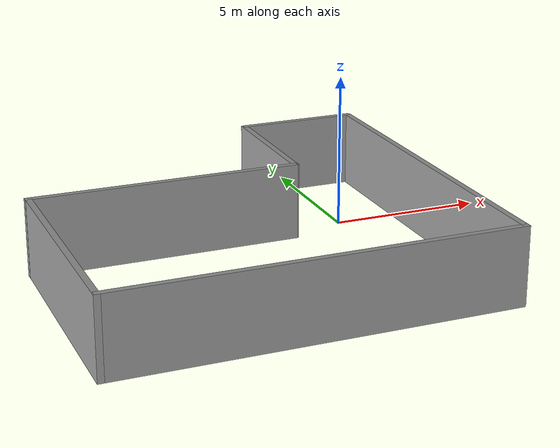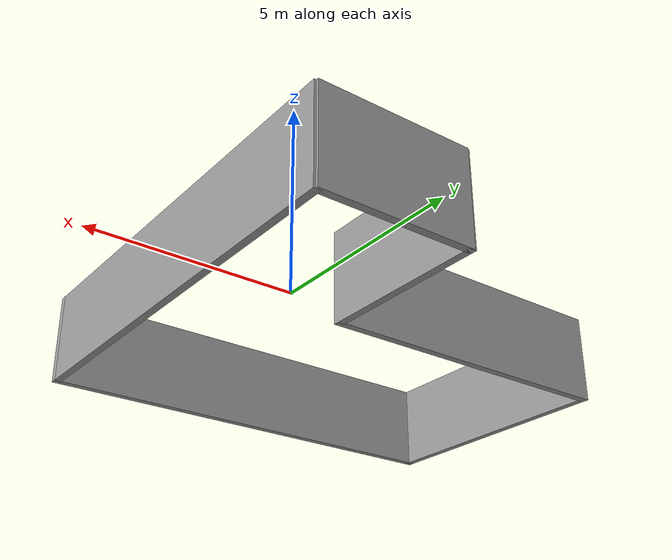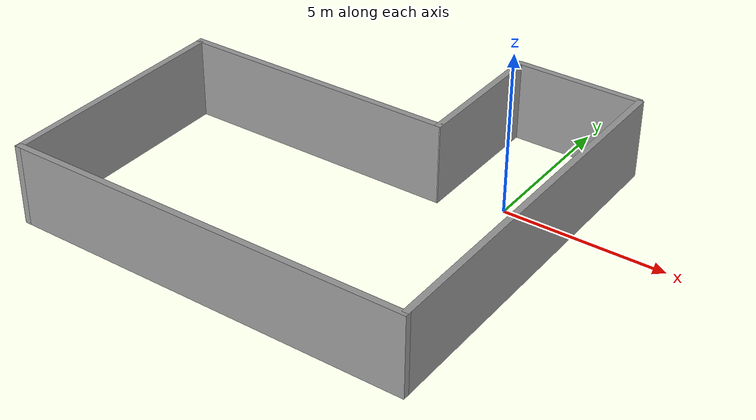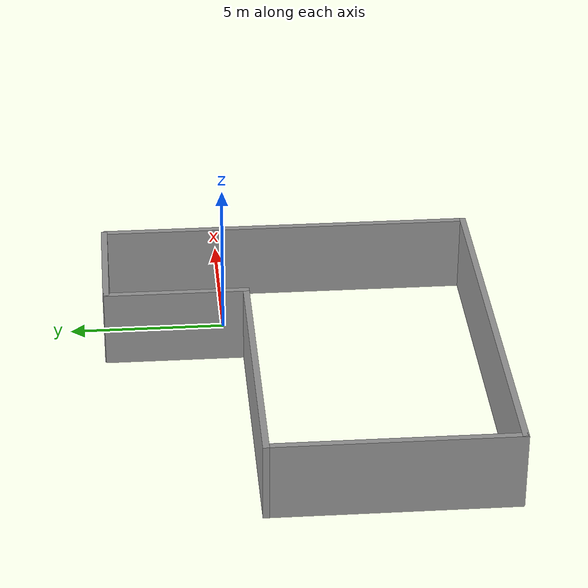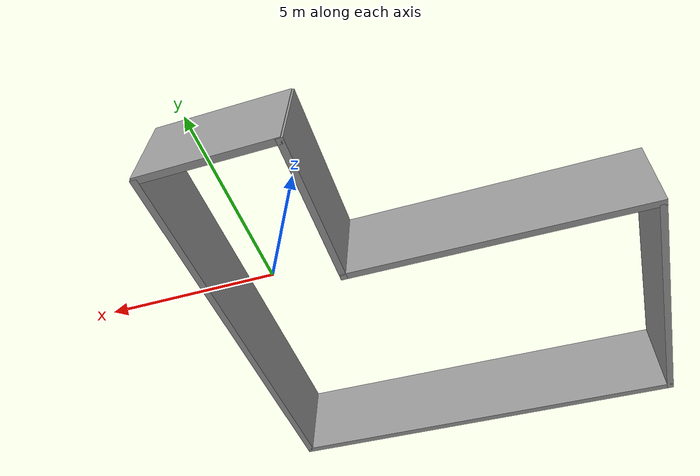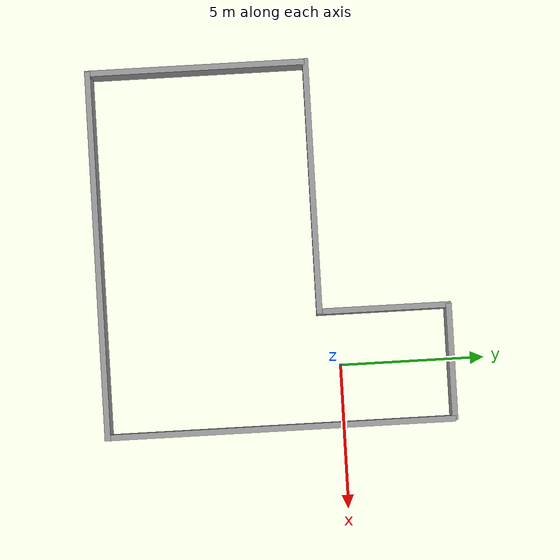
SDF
<?xml version='1.0'?>
<sdf version='1.4'>
  <model name='raven'>
    <link name='Wall_0'>
      <collision name='Wall_0_Collision'>
        <geometry>
          <box>
            <size>4 0.2 2.5</size>
          </box>
        </geometry>
        <pose>0 0 1.25 0 -0 0</pose>
      </collision>
      <visual name='Wall_0_Visual'>
        <pose>0 0 1.25 0 -0 0</pose>
        <geometry>
          <box>
            <size>4 0.2 2.5</size>
          </box>
        </geometry>
        <material>
          <script>
            <uri>file://media/materials/scripts/gazebo.material</uri>
            <name>Gazebo/Grey</name>
          </script>
        </material>
      </visual>
      <velocity_decay>
        <linear>0</linear>
        <angular>0</angular>
      </velocity_decay>
      <pose>0.1 3.8 0 0 -0 3.14159</pose>
    </link>
    <link name='Wall_10'>
      <collision name='Wall_10_Collision'>
        <geometry>
          <box>
            <size>4.60648 0.2 2.5</size>
          </box>
        </geometry>
        <pose>0 0 1.25 0 -0 0</pose>
      </collision>
      <visual name='Wall_10_Visual'>
        <pose>0 0 1.25 0 -0 0</pose>
        <geometry>
          <box>
            <size>4.60648 0.2 2.5</size>
          </box>
        </geometry>
        <material>
          <script>
            <uri>file://media/materials/scripts/gazebo.material</uri>
            <name>Gazebo/Grey</name>
          </script>
        </material>
      </visual>
      <velocity_decay>
        <linear>0</linear>
        <angular>0</angular>
      </velocity_decay>
      <pose>-1.85465 1.57091 0 0 0 -1.5708</pose>
    </link>
    <link name='Wall_12'>
      <collision name='Wall_12_Collision'>
        <geometry>
          <box>
            <size>8.77013 0.2 2.5</size>
          </box>
        </geometry>
        <pose>0 0 1.25 0 -0 0</pose>
      </collision>
      <visual name='Wall_12_Visual'>
        <pose>0 0 1.25 0 -0 0</pose>
        <geometry>
          <box>
            <size>8.77013 0.2 2.5</size>
          </box>
        </geometry>
        <material>
          <script>
            <uri>file://media/materials/scripts/gazebo.material</uri>
            <name>Gazebo/Grey</name>
          </script>
        </material>
      </visual>
      <velocity_decay>
        <linear>0</linear>
        <angular>0</angular>
      </velocity_decay>
      <pose>-6.17469 -0.633345 0 0 -0 0</pose>
    </link>
    <link name='Wall_2'>
      <collision name='Wall_2_Collision'>
        <geometry>
          <box>
            <size>11.95 0.2 2.5</size>
          </box>
        </geometry>
        <pose>0 0 1.25 0 -0 0</pose>
      </collision>
      <visual name='Wall_2_Visual'>
        <pose>0 0 1.25 0 -0 0</pose>
        <geometry>
          <box>
            <size>11.95 0.2 2.5</size>
          </box>
        </geometry>
        <material>
          <script>
            <uri>file://media/materials/scripts/gazebo.material</uri>
            <name>Gazebo/Grey</name>
          </script>
        </material>
      </visual>
      <velocity_decay>
        <linear>0</linear>
        <angular>0</angular>
      </velocity_decay>
      <pose>2.0575 -2.14023 0 0 0 -1.5708</pose>
    </link>
    <link name='Wall_4'>
      <collision name='Wall_4_Collision'>
        <geometry>
          <box>
            <size>12.68 0.2 2.5</size>
          </box>
        </geometry>
        <pose>0 0 1.25 0 -0 0</pose>
      </collision>
      <visual name='Wall_4_Visual'>
        <pose>0 0 1.25 0 -0 0</pose>
        <geometry>
          <box>
            <size>12.68 0.2 2.5</size>
          </box>
        </geometry>
        <material>
          <script>
            <uri>file://media/materials/scripts/gazebo.material</uri>
            <name>Gazebo/Grey</name>
          </script>
        </material>
      </visual>
      <velocity_decay>
        <linear>0</linear>
        <angular>0</angular>
      </velocity_decay>
      <pose>-4.1825 -8.12048 0 0 -0 3.14159</pose>
    </link>
    <link name='Wall_7'>
      <collision name='Wall_7_Collision'>
        <geometry>
          <box>
            <size>7.55 0.2 2.5</size>
          </box>
        </geometry>
        <pose>0 0 1.25 0 -0 0</pose>
      </collision>
      <visual name='Wall_7_Visual'>
        <pose>0 0 1.25 0 -0 0</pose>
        <geometry>
          <box>
            <size>7.55 0.2 2.5</size>
          </box>
        </geometry>
        <material>
          <script>
            <uri>file://media/materials/scripts/gazebo.material</uri>
            <name>Gazebo/Grey</name>
          </script>
        </material>
      </visual>
      <velocity_decay>
        <linear>0</linear>
        <angular>0</angular>
      </velocity_decay>
      <pose>-10.4533 -4.44548 0 0 -0 1.5708</pose>
    </link>
    <static>1</static>
  </model>
</sdf>
